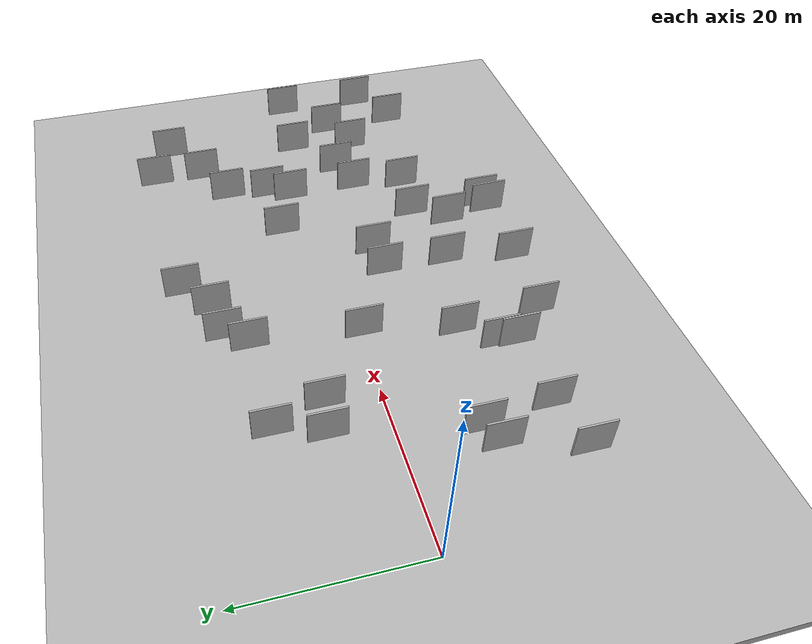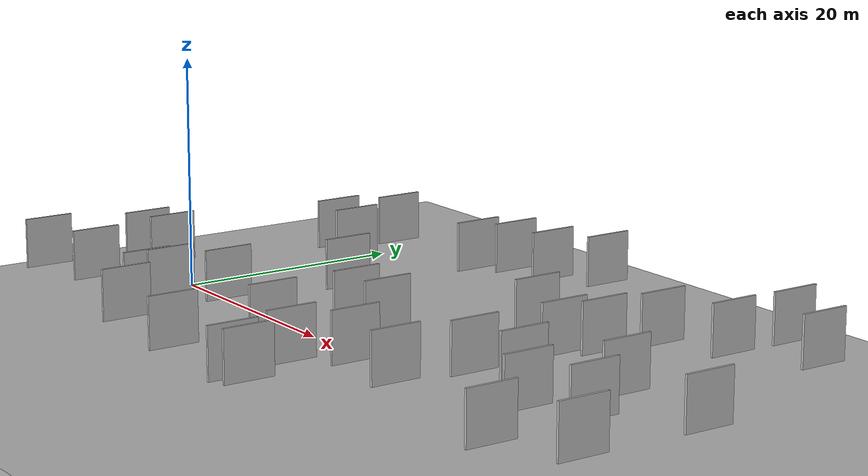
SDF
<?xml version="1.0" encoding="utf-8"?>

<sdf version="1.6">

   <world name="default">

      <gui fullscreen="0">

         <camera name="user_camera">

            <pose>-15 0 4.57585 0 0 0</pose>

            <view_controller>orbit</view_controller>

         </camera>

      </gui>

      <scene>

         <sky>

           <clouds>

             <speed>12</speed>

           </clouds>

         </sky>

         <ambient>0.4 0.4 0.4 1</ambient>

         <background>0.7 0.7 0.7 1</background>

         <shadows>1</shadows>

      </scene>

      <gravity>0 0 -9.8066</gravity>

      <magnetic_field>6e-06 2.3e-05 -4.2e-05</magnetic_field>

      <physics default="0" name="default_physics" type="ode">

         <ode>

            <solver>

               <type>quick</type>

               <iters>10</iters>

               <sor>1.0</sor>

               <use_dynamic_moi_rescaling>0</use_dynamic_moi_rescaling>

            </solver>

            <constraints>

               <cfm>0</cfm>

               <erp>0.2</erp>

               <contact_max_correcting_vel>100</contact_max_correcting_vel>

               <contact_surface_layer>0.001</contact_surface_layer>

            </constraints>

         </ode>

         <max_step_size>0.004</max_step_size>

         <real_time_factor>1</real_time_factor>

         <real_time_update_rate>250</real_time_update_rate>

      </physics>

      <light name="sun" type="directional">

         <cast_shadows>1</cast_shadows>

         <pose>0 0 10 0 0 0</pose>

         <diffuse>0.8 0.8 0.8 1</diffuse>

         <specular>0.2 0.2 0.2 1</specular>

         <attenuation>

            <range>1000</range>

            <constant>0.9</constant>

            <linear>0.01</linear>

            <quadratic>0.001</quadratic>

         </attenuation>

         <direction>-0.5 0.1 -0.9</direction>

      </light>

      <include>

         <name>ground_plane_1</name>

         <uri>model://HANNAS_ground_plane</uri>

         <pose>0 0 0  0 0 0</pose>

      </include>

      <include>

         <name>ground_plane_2</name>

         <uri>model://HANNAS_ground_plane</uri>

         <pose>100 0 0  0 0 0</pose>

      </include>

      <model name="HANNAS_wall_1">

         <static>1</static>

         <pose frame="">34.6779 18.2347 5.0 0.000000 0.000000 1.570796</pose>

         <link name="link">

            <pose frame="">0 0 2.00 0 0 0</pose>

            <collision name="collision">

               <geometry>

                  <box>

                     <size>4.00 0.2 4.00</size>

                  </box>

               </geometry>

               <max_contacts>10</max_contacts>

               <surface>

                  <contact>

                     <ode/>

                  </contact>

                  <bounce/>

                  <friction>

                     <torsional>

                        <ode/>

                     </torsional>

                     <ode/>

                  </friction>

               </surface>

            </collision>

            <visual name="visual">

               <cast_shadows>0</cast_shadows>

               <geometry>

                  <box>

                     <size>4.00 0.2 4.00</size>

                  </box>

               </geometry>

               <material>

                  <script>

                     <uri>model://HANNAS_wall/materials/scripts</uri>

                     <uri>model://HANNAS_wall/materials/textures</uri>

                     <name>vrc/HANNAS_wall</name>

                  </script>

               </material>

            </visual>

            <self_collide>0</self_collide>

            <enable_wind>0</enable_wind>

            <kinematic>0</kinematic>

         </link>

      </model>

      <model name="HANNAS_wall_2">

         <static>1</static>

         <pose frame="">41.2831 -18.5304 5.0 0.000000 0.000000 1.570796</pose>

         <link name="link">

            <pose frame="">0 0 2.00 0 0 0</pose>

            <collision name="collision">

               <geometry>

                  <box>

                     <size>4.00 0.2 4.00</size>

                  </box>

               </geometry>

               <max_contacts>10</max_contacts>

               <surface>

                  <contact>

                     <ode/>

                  </contact>

                  <bounce/>

                  <friction>

                     <torsional>

                        <ode/>

                     </torsional>

                     <ode/>

                  </friction>

               </surface>

            </collision>

            <visual name="visual">

               <cast_shadows>0</cast_shadows>

               <geometry>

                  <box>

                     <size>4.00 0.2 4.00</size>

                  </box>

               </geometry>

               <material>

                  <script>

                     <uri>model://HANNAS_wall/materials/scripts</uri>

                     <uri>model://HANNAS_wall/materials/textures</uri>

                     <name>vrc/HANNAS_wall</name>

                  </script>

               </material>

            </visual>

            <self_collide>0</self_collide>

            <enable_wind>0</enable_wind>

            <kinematic>0</kinematic>

         </link>

      </model>

      <model name="HANNAS_wall_3">

         <static>1</static>

         <pose frame="">56.8338 -6.5207 5.0 0.000000 0.000000 1.570796</pose>

         <link name="link">

            <pose frame="">0 0 2.00 0 0 0</pose>

            <collision name="collision">

               <geometry>

                  <box>

                     <size>4.00 0.2 4.00</size>

                  </box>

               </geometry>

               <max_contacts>10</max_contacts>

               <surface>

                  <contact>

                     <ode/>

                  </contact>

                  <bounce/>

                  <friction>

                     <torsional>

                        <ode/>

                     </torsional>

                     <ode/>

                  </friction>

               </surface>

            </collision>

            <visual name="visual">

               <cast_shadows>0</cast_shadows>

               <geometry>

                  <box>

                     <size>4.00 0.2 4.00</size>

                  </box>

               </geometry>

               <material>

                  <script>

                     <uri>model://HANNAS_wall/materials/scripts</uri>

                     <uri>model://HANNAS_wall/materials/textures</uri>

                     <name>vrc/HANNAS_wall</name>

                  </script>

               </material>

            </visual>

            <self_collide>0</self_collide>

            <enable_wind>0</enable_wind>

            <kinematic>0</kinematic>

         </link>

      </model>

      <model name="HANNAS_wall_4">

         <static>1</static>

         <pose frame="">23.8097 0.8381 5.0 0.000000 0.000000 1.570796</pose>

         <link name="link">

            <pose frame="">0 0 2.00 0 0 0</pose>

            <collision name="collision">

               <geometry>

                  <box>

                     <size>4.00 0.2 4.00</size>

                  </box>

               </geometry>

               <max_contacts>10</max_contacts>

               <surface>

                  <contact>

                     <ode/>

                  </contact>

                  <bounce/>

                  <friction>

                     <torsional>

                        <ode/>

                     </torsional>

                     <ode/>

                  </friction>

               </surface>

            </collision>

            <visual name="visual">

               <cast_shadows>0</cast_shadows>

               <geometry>

                  <box>

                     <size>4.00 0.2 4.00</size>

                  </box>

               </geometry>

               <material>

                  <script>

                     <uri>model://HANNAS_wall/materials/scripts</uri>

                     <uri>model://HANNAS_wall/materials/textures</uri>

                     <name>vrc/HANNAS_wall</name>

                  </script>

               </material>

            </visual>

            <self_collide>0</self_collide>

            <enable_wind>0</enable_wind>

            <kinematic>0</kinematic>

         </link>

      </model>

      <model name="HANNAS_wall_5">

         <static>1</static>

         <pose frame="">41.9706 5.6395 5.0 0.000000 0.000000 1.570796</pose>

         <link name="link">

            <pose frame="">0 0 2.00 0 0 0</pose>

            <collision name="collision">

               <geometry>

                  <box>

                     <size>4.00 0.2 4.00</size>

                  </box>

               </geometry>

               <max_contacts>10</max_contacts>

               <surface>

                  <contact>

                     <ode/>

                  </contact>

                  <bounce/>

                  <friction>

                     <torsional>

                        <ode/>

                     </torsional>

                     <ode/>

                  </friction>

               </surface>

            </collision>

            <visual name="visual">

               <cast_shadows>0</cast_shadows>

               <geometry>

                  <box>

                     <size>4.00 0.2 4.00</size>

                  </box>

               </geometry>

               <material>

                  <script>

                     <uri>model://HANNAS_wall/materials/scripts</uri>

                     <uri>model://HANNAS_wall/materials/textures</uri>

                     <name>vrc/HANNAS_wall</name>

                  </script>

               </material>

            </visual>

            <self_collide>0</self_collide>

            <enable_wind>0</enable_wind>

            <kinematic>0</kinematic>

         </link>

      </model>

      <model name="HANNAS_wall_6">

         <static>1</static>

         <pose frame="">40.0282 -19.0480 5.0 0.000000 0.000000 1.570796</pose>

         <link name="link">

            <pose frame="">0 0 2.00 0 0 0</pose>

            <collision name="collision">

               <geometry>

                  <box>

                     <size>4.00 0.2 4.00</size>

                  </box>

               </geometry>

               <max_contacts>10</max_contacts>

               <surface>

                  <contact>

                     <ode/>

                  </contact>

                  <bounce/>

                  <friction>

                     <torsional>

                        <ode/>

                     </torsional>

                     <ode/>

                  </friction>

               </surface>

            </collision>

            <visual name="visual">

               <cast_shadows>0</cast_shadows>

               <geometry>

                  <box>

                     <size>4.00 0.2 4.00</size>

                  </box>

               </geometry>

               <material>

                  <script>

                     <uri>model://HANNAS_wall/materials/scripts</uri>

                     <uri>model://HANNAS_wall/materials/textures</uri>

                     <name>vrc/HANNAS_wall</name>

                  </script>

               </material>

            </visual>

            <self_collide>0</self_collide>

            <enable_wind>0</enable_wind>

            <kinematic>0</kinematic>

         </link>

      </model>

      <model name="HANNAS_wall_7">

         <static>1</static>

         <pose frame="">32.2907 -11.1656 5.0 0.000000 0.000000 1.570796</pose>

         <link name="link">

            <pose frame="">0 0 2.00 0 0 0</pose>

            <collision name="collision">

               <geometry>

                  <box>

                     <size>4.00 0.2 4.00</size>

                  </box>

               </geometry>

               <max_contacts>10</max_contacts>

               <surface>

                  <contact>

                     <ode/>

                  </contact>

                  <bounce/>

                  <friction>

                     <torsional>

                        <ode/>

                     </torsional>

                     <ode/>

                  </friction>

               </surface>

            </collision>

            <visual name="visual">

               <cast_shadows>0</cast_shadows>

               <geometry>

                  <box>

                     <size>4.00 0.2 4.00</size>

                  </box>

               </geometry>

               <material>

                  <script>

                     <uri>model://HANNAS_wall/materials/scripts</uri>

                     <uri>model://HANNAS_wall/materials/textures</uri>

                     <name>vrc/HANNAS_wall</name>

                  </script>

               </material>

            </visual>

            <self_collide>0</self_collide>

            <enable_wind>0</enable_wind>

            <kinematic>0</kinematic>

         </link>

      </model>

      <model name="HANNAS_wall_8">

         <static>1</static>

         <pose frame="">49.4376 5.8700 5.0 0.000000 0.000000 1.570796</pose>

         <link name="link">

            <pose frame="">0 0 2.00 0 0 0</pose>

            <collision name="collision">

               <geometry>

                  <box>

                     <size>4.00 0.2 4.00</size>

                  </box>

               </geometry>

               <max_contacts>10</max_contacts>

               <surface>

                  <contact>

                     <ode/>

                  </contact>

                  <bounce/>

                  <friction>

                     <torsional>

                        <ode/>

                     </torsional>

                     <ode/>

                  </friction>

               </surface>

            </collision>

            <visual name="visual">

               <cast_shadows>0</cast_shadows>

               <geometry>

                  <box>

                     <size>4.00 0.2 4.00</size>

                  </box>

               </geometry>

               <material>

                  <script>

                     <uri>model://HANNAS_wall/materials/scripts</uri>

                     <uri>model://HANNAS_wall/materials/textures</uri>

                     <name>vrc/HANNAS_wall</name>

                  </script>

               </material>

            </visual>

            <self_collide>0</self_collide>

            <enable_wind>0</enable_wind>

            <kinematic>0</kinematic>

         </link>

      </model>

      <model name="HANNAS_wall_9">

         <static>1</static>

         <pose frame="">31.0938 15.5509 5.0 0.000000 0.000000 1.570796</pose>

         <link name="link">

            <pose frame="">0 0 2.00 0 0 0</pose>

            <collision name="collision">

               <geometry>

                  <box>

                     <size>4.00 0.2 4.00</size>

                  </box>

               </geometry>

               <max_contacts>10</max_contacts>

               <surface>

                  <contact>

                     <ode/>

                  </contact>

                  <bounce/>

                  <friction>

                     <torsional>

                        <ode/>

                     </torsional>

                     <ode/>

                  </friction>

               </surface>

            </collision>

            <visual name="visual">

               <cast_shadows>0</cast_shadows>

               <geometry>

                  <box>

                     <size>4.00 0.2 4.00</size>

                  </box>

               </geometry>

               <material>

                  <script>

                     <uri>model://HANNAS_wall/materials/scripts</uri>

                     <uri>model://HANNAS_wall/materials/textures</uri>

                     <name>vrc/HANNAS_wall</name>

                  </script>

               </material>

            </visual>

            <self_collide>0</self_collide>

            <enable_wind>0</enable_wind>

            <kinematic>0</kinematic>

         </link>

      </model>

      <model name="HANNAS_wall_10">

         <static>1</static>

         <pose frame="">41.5080 -10.0222 5.0 0.000000 0.000000 1.570796</pose>

         <link name="link">

            <pose frame="">0 0 2.00 0 0 0</pose>

            <collision name="collision">

               <geometry>

                  <box>

                     <size>4.00 0.2 4.00</size>

                  </box>

               </geometry>

               <max_contacts>10</max_contacts>

               <surface>

                  <contact>

                     <ode/>

                  </contact>

                  <bounce/>

                  <friction>

                     <torsional>

                        <ode/>

                     </torsional>

                     <ode/>

                  </friction>

               </surface>

            </collision>

            <visual name="visual">

               <cast_shadows>0</cast_shadows>

               <geometry>

                  <box>

                     <size>4.00 0.2 4.00</size>

                  </box>

               </geometry>

               <material>

                  <script>

                     <uri>model://HANNAS_wall/materials/scripts</uri>

                     <uri>model://HANNAS_wall/materials/textures</uri>

                     <name>vrc/HANNAS_wall</name>

                  </script>

               </material>

            </visual>

            <self_collide>0</self_collide>

            <enable_wind>0</enable_wind>

            <kinematic>0</kinematic>

         </link>

      </model>

      <model name="HANNAS_wall_11">

         <static>1</static>

         <pose frame="">32.3945 -3.9706 5.0 0.000000 0.000000 1.570796</pose>

         <link name="link">

            <pose frame="">0 0 2.00 0 0 0</pose>

            <collision name="collision">

               <geometry>

                  <box>

                     <size>4.00 0.2 4.00</size>

                  </box>

               </geometry>

               <max_contacts>10</max_contacts>

               <surface>

                  <contact>

                     <ode/>

                  </contact>

                  <bounce/>

                  <friction>

                     <torsional>

                        <ode/>

                     </torsional>

                     <ode/>

                  </friction>

               </surface>

            </collision>

            <visual name="visual">

               <cast_shadows>0</cast_shadows>

               <geometry>

                  <box>

                     <size>4.00 0.2 4.00</size>

                  </box>

               </geometry>

               <material>

                  <script>

                     <uri>model://HANNAS_wall/materials/scripts</uri>

                     <uri>model://HANNAS_wall/materials/textures</uri>

                     <name>vrc/HANNAS_wall</name>

                  </script>

               </material>

            </visual>

            <self_collide>0</self_collide>

            <enable_wind>0</enable_wind>

            <kinematic>0</kinematic>

         </link>

      </model>

      <model name="HANNAS_wall_12">

         <static>1</static>

         <pose frame="">36.1132 -3.6775 5.0 0.000000 0.000000 1.570796</pose>

         <link name="link">

            <pose frame="">0 0 2.00 0 0 0</pose>

            <collision name="collision">

               <geometry>

                  <box>

                     <size>4.00 0.2 4.00</size>

                  </box>

               </geometry>

               <max_contacts>10</max_contacts>

               <surface>

                  <contact>

                     <ode/>

                  </contact>

                  <bounce/>

                  <friction>

                     <torsional>

                        <ode/>

                     </torsional>

                     <ode/>

                  </friction>

               </surface>

            </collision>

            <visual name="visual">

               <cast_shadows>0</cast_shadows>

               <geometry>

                  <box>

                     <size>4.00 0.2 4.00</size>

                  </box>

               </geometry>

               <material>

                  <script>

                     <uri>model://HANNAS_wall/materials/scripts</uri>

                     <uri>model://HANNAS_wall/materials/textures</uri>

                     <name>vrc/HANNAS_wall</name>

                  </script>

               </material>

            </visual>

            <self_collide>0</self_collide>

            <enable_wind>0</enable_wind>

            <kinematic>0</kinematic>

         </link>

      </model>

      <model name="HANNAS_wall_13">

         <static>1</static>

         <pose frame="">60.7066 16.3525 5.0 0.000000 0.000000 1.570796</pose>

         <link name="link">

            <pose frame="">0 0 2.00 0 0 0</pose>

            <collision name="collision">

               <geometry>

                  <box>

                     <size>4.00 0.2 4.00</size>

                  </box>

               </geometry>

               <max_contacts>10</max_contacts>

               <surface>

                  <contact>

                     <ode/>

                  </contact>

                  <bounce/>

                  <friction>

                     <torsional>

                        <ode/>

                     </torsional>

                     <ode/>

                  </friction>

               </surface>

            </collision>

            <visual name="visual">

               <cast_shadows>0</cast_shadows>

               <geometry>

                  <box>

                     <size>4.00 0.2 4.00</size>

                  </box>

               </geometry>

               <material>

                  <script>

                     <uri>model://HANNAS_wall/materials/scripts</uri>

                     <uri>model://HANNAS_wall/materials/textures</uri>

                     <name>vrc/HANNAS_wall</name>

                  </script>

               </material>

            </visual>

            <self_collide>0</self_collide>

            <enable_wind>0</enable_wind>

            <kinematic>0</kinematic>

         </link>

      </model>

      <model name="HANNAS_wall_14">

         <static>1</static>

         <pose frame="">48.3016 -4.6611 5.0 0.000000 0.000000 1.570796</pose>

         <link name="link">

            <pose frame="">0 0 2.00 0 0 0</pose>

            <collision name="collision">

               <geometry>

                  <box>

                     <size>4.00 0.2 4.00</size>

                  </box>

               </geometry>

               <max_contacts>10</max_contacts>

               <surface>

                  <contact>

                     <ode/>

                  </contact>

                  <bounce/>

                  <friction>

                     <torsional>

                        <ode/>

                     </torsional>

                     <ode/>

                  </friction>

               </surface>

            </collision>

            <visual name="visual">

               <cast_shadows>0</cast_shadows>

               <geometry>

                  <box>

                     <size>4.00 0.2 4.00</size>

                  </box>

               </geometry>

               <material>

                  <script>

                     <uri>model://HANNAS_wall/materials/scripts</uri>

                     <uri>model://HANNAS_wall/materials/textures</uri>

                     <name>vrc/HANNAS_wall</name>

                  </script>

               </material>

            </visual>

            <self_collide>0</self_collide>

            <enable_wind>0</enable_wind>

            <kinematic>0</kinematic>

         </link>

      </model>

      <model name="HANNAS_wall_15">

         <static>1</static>

         <pose frame="">61.4037 -12.8833 5.0 0.000000 0.000000 1.570796</pose>

         <link name="link">

            <pose frame="">0 0 2.00 0 0 0</pose>

            <collision name="collision">

               <geometry>

                  <box>

                     <size>4.00 0.2 4.00</size>

                  </box>

               </geometry>

               <max_contacts>10</max_contacts>

               <surface>

                  <contact>

                     <ode/>

                  </contact>

                  <bounce/>

                  <friction>

                     <torsional>

                        <ode/>

                     </torsional>

                     <ode/>

                  </friction>

               </surface>

            </collision>

            <visual name="visual">

               <cast_shadows>0</cast_shadows>

               <geometry>

                  <box>

                     <size>4.00 0.2 4.00</size>

                  </box>

               </geometry>

               <material>

                  <script>

                     <uri>model://HANNAS_wall/materials/scripts</uri>

                     <uri>model://HANNAS_wall/materials/textures</uri>

                     <name>vrc/HANNAS_wall</name>

                  </script>

               </material>

            </visual>

            <self_collide>0</self_collide>

            <enable_wind>0</enable_wind>

            <kinematic>0</kinematic>

         </link>

      </model>

      <model name="HANNAS_wall_16">

         <static>1</static>

         <pose frame="">10.0688 -14.1848 5.0 0.000000 0.000000 1.570796</pose>

         <link name="link">

            <pose frame="">0 0 2.00 0 0 0</pose>

            <collision name="collision">

               <geometry>

                  <box>

                     <size>4.00 0.2 4.00</size>

                  </box>

               </geometry>

               <max_contacts>10</max_contacts>

               <surface>

                  <contact>

                     <ode/>

                  </contact>

                  <bounce/>

                  <friction>

                     <torsional>

                        <ode/>

                     </torsional>

                     <ode/>

                  </friction>

               </surface>

            </collision>

            <visual name="visual">

               <cast_shadows>0</cast_shadows>

               <geometry>

                  <box>

                     <size>4.00 0.2 4.00</size>

                  </box>

               </geometry>

               <material>

                  <script>

                     <uri>model://HANNAS_wall/materials/scripts</uri>

                     <uri>model://HANNAS_wall/materials/textures</uri>

                     <name>vrc/HANNAS_wall</name>

                  </script>

               </material>

            </visual>

            <self_collide>0</self_collide>

            <enable_wind>0</enable_wind>

            <kinematic>0</kinematic>

         </link>

      </model>

      <model name="HANNAS_wall_17">

         <static>1</static>

         <pose frame="">24.9942 12.6463 5.0 0.000000 0.000000 1.570796</pose>

         <link name="link">

            <pose frame="">0 0 2.00 0 0 0</pose>

            <collision name="collision">

               <geometry>

                  <box>

                     <size>4.00 0.2 4.00</size>

                  </box>

               </geometry>

               <max_contacts>10</max_contacts>

               <surface>

                  <contact>

                     <ode/>

                  </contact>

                  <bounce/>

                  <friction>

                     <torsional>

                        <ode/>

                     </torsional>

                     <ode/>

                  </friction>

               </surface>

            </collision>

            <visual name="visual">

               <cast_shadows>0</cast_shadows>

               <geometry>

                  <box>

                     <size>4.00 0.2 4.00</size>

                  </box>

               </geometry>

               <material>

                  <script>

                     <uri>model://HANNAS_wall/materials/scripts</uri>

                     <uri>model://HANNAS_wall/materials/textures</uri>

                     <name>vrc/HANNAS_wall</name>

                  </script>

               </material>

            </visual>

            <self_collide>0</self_collide>

            <enable_wind>0</enable_wind>

            <kinematic>0</kinematic>

         </link>

      </model>

      <model name="HANNAS_wall_18">

         <static>1</static>

         <pose frame="">47.2511 -10.5156 5.0 0.000000 0.000000 1.570796</pose>

         <link name="link">

            <pose frame="">0 0 2.00 0 0 0</pose>

            <collision name="collision">

               <geometry>

                  <box>

                     <size>4.00 0.2 4.00</size>

                  </box>

               </geometry>

               <max_contacts>10</max_contacts>

               <surface>

                  <contact>

                     <ode/>

                  </contact>

                  <bounce/>

                  <friction>

                     <torsional>

                        <ode/>

                     </torsional>

                     <ode/>

                  </friction>

               </surface>

            </collision>

            <visual name="visual">

               <cast_shadows>0</cast_shadows>

               <geometry>

                  <box>

                     <size>4.00 0.2 4.00</size>

                  </box>

               </geometry>

               <material>

                  <script>

                     <uri>model://HANNAS_wall/materials/scripts</uri>

                     <uri>model://HANNAS_wall/materials/textures</uri>

                     <name>vrc/HANNAS_wall</name>

                  </script>

               </material>

            </visual>

            <self_collide>0</self_collide>

            <enable_wind>0</enable_wind>

            <kinematic>0</kinematic>

         </link>

      </model>

      <model name="HANNAS_wall_19">

         <static>1</static>

         <pose frame="">50.2220 10.6491 5.0 0.000000 0.000000 1.570796</pose>

         <link name="link">

            <pose frame="">0 0 2.00 0 0 0</pose>

            <collision name="collision">

               <geometry>

                  <box>

                     <size>4.00 0.2 4.00</size>

                  </box>

               </geometry>

               <max_contacts>10</max_contacts>

               <surface>

                  <contact>

                     <ode/>

                  </contact>

                  <bounce/>

                  <friction>

                     <torsional>

                        <ode/>

                     </torsional>

                     <ode/>

                  </friction>

               </surface>

            </collision>

            <visual name="visual">

               <cast_shadows>0</cast_shadows>

               <geometry>

                  <box>

                     <size>4.00 0.2 4.00</size>

                  </box>

               </geometry>

               <material>

                  <script>

                     <uri>model://HANNAS_wall/materials/scripts</uri>

                     <uri>model://HANNAS_wall/materials/textures</uri>

                     <name>vrc/HANNAS_wall</name>

                  </script>

               </material>

            </visual>

            <self_collide>0</self_collide>

            <enable_wind>0</enable_wind>

            <kinematic>0</kinematic>

         </link>

      </model>

      <model name="HANNAS_wall_20">

         <static>1</static>

         <pose frame="">39.0087 -13.7221 5.0 0.000000 0.000000 1.570796</pose>

         <link name="link">

            <pose frame="">0 0 2.00 0 0 0</pose>

            <collision name="collision">

               <geometry>

                  <box>

                     <size>4.00 0.2 4.00</size>

                  </box>

               </geometry>

               <max_contacts>10</max_contacts>

               <surface>

                  <contact>

                     <ode/>

                  </contact>

                  <bounce/>

                  <friction>

                     <torsional>

                        <ode/>

                     </torsional>

                     <ode/>

                  </friction>

               </surface>

            </collision>

            <visual name="visual">

               <cast_shadows>0</cast_shadows>

               <geometry>

                  <box>

                     <size>4.00 0.2 4.00</size>

                  </box>

               </geometry>

               <material>

                  <script>

                     <uri>model://HANNAS_wall/materials/scripts</uri>

                     <uri>model://HANNAS_wall/materials/textures</uri>

                     <name>vrc/HANNAS_wall</name>

                  </script>

               </material>

            </visual>

            <self_collide>0</self_collide>

            <enable_wind>0</enable_wind>

            <kinematic>0</kinematic>

         </link>

      </model>

      <model name="HANNAS_wall_21">

         <static>1</static>

         <pose frame="">18.8924 -12.2802 5.0 0.000000 0.000000 1.570796</pose>

         <link name="link">

            <pose frame="">0 0 2.00 0 0 0</pose>

            <collision name="collision">

               <geometry>

                  <box>

                     <size>4.00 0.2 4.00</size>

                  </box>

               </geometry>

               <max_contacts>10</max_contacts>

               <surface>

                  <contact>

                     <ode/>

                  </contact>

                  <bounce/>

                  <friction>

                     <torsional>

                        <ode/>

                     </torsional>

                     <ode/>

                  </friction>

               </surface>

            </collision>

            <visual name="visual">

               <cast_shadows>0</cast_shadows>

               <geometry>

                  <box>

                     <size>4.00 0.2 4.00</size>

                  </box>

               </geometry>

               <material>

                  <script>

                     <uri>model://HANNAS_wall/materials/scripts</uri>

                     <uri>model://HANNAS_wall/materials/textures</uri>

                     <name>vrc/HANNAS_wall</name>

                  </script>

               </material>

            </visual>

            <self_collide>0</self_collide>

            <enable_wind>0</enable_wind>

            <kinematic>0</kinematic>

         </link>

      </model>

      <model name="HANNAS_wall_22">

         <static>1</static>

         <pose frame="">55.1915 18.8106 5.0 0.000000 0.000000 1.570796</pose>

         <link name="link">

            <pose frame="">0 0 2.00 0 0 0</pose>

            <collision name="collision">

               <geometry>

                  <box>

                     <size>4.00 0.2 4.00</size>

                  </box>

               </geometry>

               <max_contacts>10</max_contacts>

               <surface>

                  <contact>

                     <ode/>

                  </contact>

                  <bounce/>

                  <friction>

                     <torsional>

                        <ode/>

                     </torsional>

                     <ode/>

                  </friction>

               </surface>

            </collision>

            <visual name="visual">

               <cast_shadows>0</cast_shadows>

               <geometry>

                  <box>

                     <size>4.00 0.2 4.00</size>

                  </box>

               </geometry>

               <material>

                  <script>

                     <uri>model://HANNAS_wall/materials/scripts</uri>

                     <uri>model://HANNAS_wall/materials/textures</uri>

                     <name>vrc/HANNAS_wall</name>

                  </script>

               </material>

            </visual>

            <self_collide>0</self_collide>

            <enable_wind>0</enable_wind>

            <kinematic>0</kinematic>

         </link>

      </model>

      <model name="HANNAS_wall_23">

         <static>1</static>

         <pose frame="">27.0279 14.9496 5.0 0.000000 0.000000 1.570796</pose>

         <link name="link">

            <pose frame="">0 0 2.00 0 0 0</pose>

            <collision name="collision">

               <geometry>

                  <box>

                     <size>4.00 0.2 4.00</size>

                  </box>

               </geometry>

               <max_contacts>10</max_contacts>

               <surface>

                  <contact>

                     <ode/>

                  </contact>

                  <bounce/>

                  <friction>

                     <torsional>

                        <ode/>

                     </torsional>

                     <ode/>

                  </friction>

               </surface>

            </collision>

            <visual name="visual">

               <cast_shadows>0</cast_shadows>

               <geometry>

                  <box>

                     <size>4.00 0.2 4.00</size>

                  </box>

               </geometry>

               <material>

                  <script>

                     <uri>model://HANNAS_wall/materials/scripts</uri>

                     <uri>model://HANNAS_wall/materials/textures</uri>

                     <name>vrc/HANNAS_wall</name>

                  </script>

               </material>

            </visual>

            <self_collide>0</self_collide>

            <enable_wind>0</enable_wind>

            <kinematic>0</kinematic>

         </link>

      </model>

      <model name="HANNAS_wall_24">

         <static>1</static>

         <pose frame="">13.5922 12.6029 5.0 0.000000 0.000000 1.570796</pose>

         <link name="link">

            <pose frame="">0 0 2.00 0 0 0</pose>

            <collision name="collision">

               <geometry>

                  <box>

                     <size>4.00 0.2 4.00</size>

                  </box>

               </geometry>

               <max_contacts>10</max_contacts>

               <surface>

                  <contact>

                     <ode/>

                  </contact>

                  <bounce/>

                  <friction>

                     <torsional>

                        <ode/>

                     </torsional>

                     <ode/>

                  </friction>

               </surface>

            </collision>

            <visual name="visual">

               <cast_shadows>0</cast_shadows>

               <geometry>

                  <box>

                     <size>4.00 0.2 4.00</size>

                  </box>

               </geometry>

               <material>

                  <script>

                     <uri>model://HANNAS_wall/materials/scripts</uri>

                     <uri>model://HANNAS_wall/materials/textures</uri>

                     <name>vrc/HANNAS_wall</name>

                  </script>

               </material>

            </visual>

            <self_collide>0</self_collide>

            <enable_wind>0</enable_wind>

            <kinematic>0</kinematic>

         </link>

      </model>

      <model name="HANNAS_wall_25">

         <static>1</static>

         <pose frame="">22.3306 -17.9284 5.0 0.000000 0.000000 1.570796</pose>

         <link name="link">

            <pose frame="">0 0 2.00 0 0 0</pose>

            <collision name="collision">

               <geometry>

                  <box>

                     <size>4.00 0.2 4.00</size>

                  </box>

               </geometry>

               <max_contacts>10</max_contacts>

               <surface>

                  <contact>

                     <ode/>

                  </contact>

                  <bounce/>

                  <friction>

                     <torsional>

                        <ode/>

                     </torsional>

                     <ode/>

                  </friction>

               </surface>

            </collision>

            <visual name="visual">

               <cast_shadows>0</cast_shadows>

               <geometry>

                  <box>

                     <size>4.00 0.2 4.00</size>

                  </box>

               </geometry>

               <material>

                  <script>

                     <uri>model://HANNAS_wall/materials/scripts</uri>

                     <uri>model://HANNAS_wall/materials/textures</uri>

                     <name>vrc/HANNAS_wall</name>

                  </script>

               </material>

            </visual>

            <self_collide>0</self_collide>

            <enable_wind>0</enable_wind>

            <kinematic>0</kinematic>

         </link>

      </model>

      <model name="HANNAS_wall_26">

         <static>1</static>

         <pose frame="">15.6214 7.0229 5.0 0.000000 0.000000 1.570796</pose>

         <link name="link">

            <pose frame="">0 0 2.00 0 0 0</pose>

            <collision name="collision">

               <geometry>

                  <box>

                     <size>4.00 0.2 4.00</size>

                  </box>

               </geometry>

               <max_contacts>10</max_contacts>

               <surface>

                  <contact>

                     <ode/>

                  </contact>

                  <bounce/>

                  <friction>

                     <torsional>

                        <ode/>

                     </torsional>

                     <ode/>

                  </friction>

               </surface>

            </collision>

            <visual name="visual">

               <cast_shadows>0</cast_shadows>

               <geometry>

                  <box>

                     <size>4.00 0.2 4.00</size>

                  </box>

               </geometry>

               <material>

                  <script>

                     <uri>model://HANNAS_wall/materials/scripts</uri>

                     <uri>model://HANNAS_wall/materials/textures</uri>

                     <name>vrc/HANNAS_wall</name>

                  </script>

               </material>

            </visual>

            <self_collide>0</self_collide>

            <enable_wind>0</enable_wind>

            <kinematic>0</kinematic>

         </link>

      </model>

      <model name="HANNAS_wall_27">

         <static>1</static>

         <pose frame="">48.1518 3.2846 5.0 0.000000 0.000000 1.570796</pose>

         <link name="link">

            <pose frame="">0 0 2.00 0 0 0</pose>

            <collision name="collision">

               <geometry>

                  <box>

                     <size>4.00 0.2 4.00</size>

                  </box>

               </geometry>

               <max_contacts>10</max_contacts>

               <surface>

                  <contact>

                     <ode/>

                  </contact>

                  <bounce/>

                  <friction>

                     <torsional>

                        <ode/>

                     </torsional>

                     <ode/>

                  </friction>

               </surface>

            </collision>

            <visual name="visual">

               <cast_shadows>0</cast_shadows>

               <geometry>

                  <box>

                     <size>4.00 0.2 4.00</size>

                  </box>

               </geometry>

               <material>

                  <script>

                     <uri>model://HANNAS_wall/materials/scripts</uri>

                     <uri>model://HANNAS_wall/materials/textures</uri>

                     <name>vrc/HANNAS_wall</name>

                  </script>

               </material>

            </visual>

            <self_collide>0</self_collide>

            <enable_wind>0</enable_wind>

            <kinematic>0</kinematic>

         </link>

      </model>

      <model name="HANNAS_wall_28">

         <static>1</static>

         <pose frame="">11.8843 7.6312 5.0 0.000000 0.000000 1.570796</pose>

         <link name="link">

            <pose frame="">0 0 2.00 0 0 0</pose>

            <collision name="collision">

               <geometry>

                  <box>

                     <size>4.00 0.2 4.00</size>

                  </box>

               </geometry>

               <max_contacts>10</max_contacts>

               <surface>

                  <contact>

                     <ode/>

                  </contact>

                  <bounce/>

                  <friction>

                     <torsional>

                        <ode/>

                     </torsional>

                     <ode/>

                  </friction>

               </surface>

            </collision>

            <visual name="visual">

               <cast_shadows>0</cast_shadows>

               <geometry>

                  <box>

                     <size>4.00 0.2 4.00</size>

                  </box>

               </geometry>

               <material>

                  <script>

                     <uri>model://HANNAS_wall/materials/scripts</uri>

                     <uri>model://HANNAS_wall/materials/textures</uri>

                     <name>vrc/HANNAS_wall</name>

                  </script>

               </material>

            </visual>

            <self_collide>0</self_collide>

            <enable_wind>0</enable_wind>

            <kinematic>0</kinematic>

         </link>

      </model>

      <model name="HANNAS_wall_29">

         <static>1</static>

         <pose frame="">4.2688 -15.5294 5.0 0.000000 0.000000 1.570796</pose>

         <link name="link">

            <pose frame="">0 0 2.00 0 0 0</pose>

            <collision name="collision">

               <geometry>

                  <box>

                     <size>4.00 0.2 4.00</size>

                  </box>

               </geometry>

               <max_contacts>10</max_contacts>

               <surface>

                  <contact>

                     <ode/>

                  </contact>

                  <bounce/>

                  <friction>

                     <torsional>

                        <ode/>

                     </torsional>

                     <ode/>

                  </friction>

               </surface>

            </collision>

            <visual name="visual">

               <cast_shadows>0</cast_shadows>

               <geometry>

                  <box>

                     <size>4.00 0.2 4.00</size>

                  </box>

               </geometry>

               <material>

                  <script>

                     <uri>model://HANNAS_wall/materials/scripts</uri>

                     <uri>model://HANNAS_wall/materials/textures</uri>

                     <name>vrc/HANNAS_wall</name>

                  </script>

               </material>

            </visual>

            <self_collide>0</self_collide>

            <enable_wind>0</enable_wind>

            <kinematic>0</kinematic>

         </link>

      </model>

      <model name="HANNAS_wall_30">

         <static>1</static>

         <pose frame="">66.6837 -9.7777 5.0 0.000000 0.000000 1.570796</pose>

         <link name="link">

            <pose frame="">0 0 2.00 0 0 0</pose>

            <collision name="collision">

               <geometry>

                  <box>

                     <size>4.00 0.2 4.00</size>

                  </box>

               </geometry>

               <max_contacts>10</max_contacts>

               <surface>

                  <contact>

                     <ode/>

                  </contact>

                  <bounce/>

                  <friction>

                     <torsional>

                        <ode/>

                     </torsional>

                     <ode/>

                  </friction>

               </surface>

            </collision>

            <visual name="visual">

               <cast_shadows>0</cast_shadows>

               <geometry>

                  <box>

                     <size>4.00 0.2 4.00</size>

                  </box>

               </geometry>

               <material>

                  <script>

                     <uri>model://HANNAS_wall/materials/scripts</uri>

                     <uri>model://HANNAS_wall/materials/textures</uri>

                     <name>vrc/HANNAS_wall</name>

                  </script>

               </material>

            </visual>

            <self_collide>0</self_collide>

            <enable_wind>0</enable_wind>

            <kinematic>0</kinematic>

         </link>

      </model>

      <model name="HANNAS_wall_31">

         <static>1</static>

         <pose frame="">66.8754 0.2989 5.0 0.000000 0.000000 1.570796</pose>

         <link name="link">

            <pose frame="">0 0 2.00 0 0 0</pose>

            <collision name="collision">

               <geometry>

                  <box>

                     <size>4.00 0.2 4.00</size>

                  </box>

               </geometry>

               <max_contacts>10</max_contacts>

               <surface>

                  <contact>

                     <ode/>

                  </contact>

                  <bounce/>

                  <friction>

                     <torsional>

                        <ode/>

                     </torsional>

                     <ode/>

                  </friction>

               </surface>

            </collision>

            <visual name="visual">

               <cast_shadows>0</cast_shadows>

               <geometry>

                  <box>

                     <size>4.00 0.2 4.00</size>

                  </box>

               </geometry>

               <material>

                  <script>

                     <uri>model://HANNAS_wall/materials/scripts</uri>

                     <uri>model://HANNAS_wall/materials/textures</uri>

                     <name>vrc/HANNAS_wall</name>

                  </script>

               </material>

            </visual>

            <self_collide>0</self_collide>

            <enable_wind>0</enable_wind>

            <kinematic>0</kinematic>

         </link>

      </model>

      <model name="HANNAS_wall_32">

         <static>1</static>

         <pose frame="">61.1235 -4.4262 5.0 0.000000 0.000000 1.570796</pose>

         <link name="link">

            <pose frame="">0 0 2.00 0 0 0</pose>

            <collision name="collision">

               <geometry>

                  <box>

                     <size>4.00 0.2 4.00</size>

                  </box>

               </geometry>

               <max_contacts>10</max_contacts>

               <surface>

                  <contact>

                     <ode/>

                  </contact>

                  <bounce/>

                  <friction>

                     <torsional>

                        <ode/>

                     </torsional>

                     <ode/>

                  </friction>

               </surface>

            </collision>

            <visual name="visual">

               <cast_shadows>0</cast_shadows>

               <geometry>

                  <box>

                     <size>4.00 0.2 4.00</size>

                  </box>

               </geometry>

               <material>

                  <script>

                     <uri>model://HANNAS_wall/materials/scripts</uri>

                     <uri>model://HANNAS_wall/materials/textures</uri>

                     <name>vrc/HANNAS_wall</name>

                  </script>

               </material>

            </visual>

            <self_collide>0</self_collide>

            <enable_wind>0</enable_wind>

            <kinematic>0</kinematic>

         </link>

      </model>

      <model name="HANNAS_wall_33">

         <static>1</static>

         <pose frame="">9.0816 -6.7446 5.0 0.000000 0.000000 1.570796</pose>

         <link name="link">

            <pose frame="">0 0 2.00 0 0 0</pose>

            <collision name="collision">

               <geometry>

                  <box>

                     <size>4.00 0.2 4.00</size>

                  </box>

               </geometry>

               <max_contacts>10</max_contacts>

               <surface>

                  <contact>

                     <ode/>

                  </contact>

                  <bounce/>

                  <friction>

                     <torsional>

                        <ode/>

                     </torsional>

                     <ode/>

                  </friction>

               </surface>

            </collision>

            <visual name="visual">

               <cast_shadows>0</cast_shadows>

               <geometry>

                  <box>

                     <size>4.00 0.2 4.00</size>

                  </box>

               </geometry>

               <material>

                  <script>

                     <uri>model://HANNAS_wall/materials/scripts</uri>

                     <uri>model://HANNAS_wall/materials/textures</uri>

                     <name>vrc/HANNAS_wall</name>

                  </script>

               </material>

            </visual>

            <self_collide>0</self_collide>

            <enable_wind>0</enable_wind>

            <kinematic>0</kinematic>

         </link>

      </model>

      <model name="HANNAS_wall_34">

         <static>1</static>

         <pose frame="">55.0115 13.1132 5.0 0.000000 0.000000 1.570796</pose>

         <link name="link">

            <pose frame="">0 0 2.00 0 0 0</pose>

            <collision name="collision">

               <geometry>

                  <box>

                     <size>4.00 0.2 4.00</size>

                  </box>

               </geometry>

               <max_contacts>10</max_contacts>

               <surface>

                  <contact>

                     <ode/>

                  </contact>

                  <bounce/>

                  <friction>

                     <torsional>

                        <ode/>

                     </torsional>

                     <ode/>

                  </friction>

               </surface>

            </collision>

            <visual name="visual">

               <cast_shadows>0</cast_shadows>

               <geometry>

                  <box>

                     <size>4.00 0.2 4.00</size>

                  </box>

               </geometry>

               <material>

                  <script>

                     <uri>model://HANNAS_wall/materials/scripts</uri>

                     <uri>model://HANNAS_wall/materials/textures</uri>

                     <name>vrc/HANNAS_wall</name>

                  </script>

               </material>

            </visual>

            <self_collide>0</self_collide>

            <enable_wind>0</enable_wind>

            <kinematic>0</kinematic>

         </link>

      </model>

      <model name="HANNAS_wall_35">

         <static>1</static>

         <pose frame="">6.7504 -7.7700 5.0 0.000000 0.000000 1.570796</pose>

         <link name="link">

            <pose frame="">0 0 2.00 0 0 0</pose>

            <collision name="collision">

               <geometry>

                  <box>

                     <size>4.00 0.2 4.00</size>

                  </box>

               </geometry>

               <max_contacts>10</max_contacts>

               <surface>

                  <contact>

                     <ode/>

                  </contact>

                  <bounce/>

                  <friction>

                     <torsional>

                        <ode/>

                     </torsional>

                     <ode/>

                  </friction>

               </surface>

            </collision>

            <visual name="visual">

               <cast_shadows>0</cast_shadows>

               <geometry>

                  <box>

                     <size>4.00 0.2 4.00</size>

                  </box>

               </geometry>

               <material>

                  <script>

                     <uri>model://HANNAS_wall/materials/scripts</uri>

                     <uri>model://HANNAS_wall/materials/textures</uri>

                     <name>vrc/HANNAS_wall</name>

                  </script>

               </material>

            </visual>

            <self_collide>0</self_collide>

            <enable_wind>0</enable_wind>

            <kinematic>0</kinematic>

         </link>

      </model>

      <model name="HANNAS_wall_36">

         <static>1</static>

         <pose frame="">58.0404 0.8102 5.0 0.000000 0.000000 1.570796</pose>

         <link name="link">

            <pose frame="">0 0 2.00 0 0 0</pose>

            <collision name="collision">

               <geometry>

                  <box>

                     <size>4.00 0.2 4.00</size>

                  </box>

               </geometry>

               <max_contacts>10</max_contacts>

               <surface>

                  <contact>

                     <ode/>

                  </contact>

                  <bounce/>

                  <friction>

                     <torsional>

                        <ode/>

                     </torsional>

                     <ode/>

                  </friction>

               </surface>

            </collision>

            <visual name="visual">

               <cast_shadows>0</cast_shadows>

               <geometry>

                  <box>

                     <size>4.00 0.2 4.00</size>

                  </box>

               </geometry>

               <material>

                  <script>

                     <uri>model://HANNAS_wall/materials/scripts</uri>

                     <uri>model://HANNAS_wall/materials/textures</uri>

                     <name>vrc/HANNAS_wall</name>

                  </script>

               </material>

            </visual>

            <self_collide>0</self_collide>

            <enable_wind>0</enable_wind>

            <kinematic>0</kinematic>

         </link>

      </model>

      <model name="HANNAS_wall_37">

         <static>1</static>

         <pose frame="">52.3082 -3.4207 5.0 0.000000 0.000000 1.570796</pose>

         <link name="link">

            <pose frame="">0 0 2.00 0 0 0</pose>

            <collision name="collision">

               <geometry>

                  <box>

                     <size>4.00 0.2 4.00</size>

                  </box>

               </geometry>

               <max_contacts>10</max_contacts>

               <surface>

                  <contact>

                     <ode/>

                  </contact>

                  <bounce/>

                  <friction>

                     <torsional>

                        <ode/>

                     </torsional>

                     <ode/>

                  </friction>

               </surface>

            </collision>

            <visual name="visual">

               <cast_shadows>0</cast_shadows>

               <geometry>

                  <box>

                     <size>4.00 0.2 4.00</size>

                  </box>

               </geometry>

               <material>

                  <script>

                     <uri>model://HANNAS_wall/materials/scripts</uri>

                     <uri>model://HANNAS_wall/materials/textures</uri>

                     <name>vrc/HANNAS_wall</name>

                  </script>

               </material>

            </visual>

            <self_collide>0</self_collide>

            <enable_wind>0</enable_wind>

            <kinematic>0</kinematic>

         </link>

      </model>

      <model name="HANNAS_wall_38">

         <static>1</static>

         <pose frame="">18.6398 -14.1969 5.0 0.000000 0.000000 1.570796</pose>

         <link name="link">

            <pose frame="">0 0 2.00 0 0 0</pose>

            <collision name="collision">

               <geometry>

                  <box>

                     <size>4.00 0.2 4.00</size>

                  </box>

               </geometry>

               <max_contacts>10</max_contacts>

               <surface>

                  <contact>

                     <ode/>

                  </contact>

                  <bounce/>

                  <friction>

                     <torsional>

                        <ode/>

                     </torsional>

                     <ode/>

                  </friction>

               </surface>

            </collision>

            <visual name="visual">

               <cast_shadows>0</cast_shadows>

               <geometry>

                  <box>

                     <size>4.00 0.2 4.00</size>

                  </box>

               </geometry>

               <material>

                  <script>

                     <uri>model://HANNAS_wall/materials/scripts</uri>

                     <uri>model://HANNAS_wall/materials/textures</uri>

                     <name>vrc/HANNAS_wall</name>

                  </script>

               </material>

            </visual>

            <self_collide>0</self_collide>

            <enable_wind>0</enable_wind>

            <kinematic>0</kinematic>

         </link>

      </model>

      <model name="HANNAS_wall_39">

         <static>1</static>

         <pose frame="">21.6546 -8.7455 5.0 0.000000 0.000000 1.570796</pose>

         <link name="link">

            <pose frame="">0 0 2.00 0 0 0</pose>

            <collision name="collision">

               <geometry>

                  <box>

                     <size>4.00 0.2 4.00</size>

                  </box>

               </geometry>

               <max_contacts>10</max_contacts>

               <surface>

                  <contact>

                     <ode/>

                  </contact>

                  <bounce/>

                  <friction>

                     <torsional>

                        <ode/>

                     </torsional>

                     <ode/>

                  </friction>

               </surface>

            </collision>

            <visual name="visual">

               <cast_shadows>0</cast_shadows>

               <geometry>

                  <box>

                     <size>4.00 0.2 4.00</size>

                  </box>

               </geometry>

               <material>

                  <script>

                     <uri>model://HANNAS_wall/materials/scripts</uri>

                     <uri>model://HANNAS_wall/materials/textures</uri>

                     <name>vrc/HANNAS_wall</name>

                  </script>

               </material>

            </visual>

            <self_collide>0</self_collide>

            <enable_wind>0</enable_wind>

            <kinematic>0</kinematic>

         </link>

      </model>

      <model name="HANNAS_wall_40">

         <static>1</static>

         <pose frame="">31.0297 -18.7314 5.0 0.000000 0.000000 1.570796</pose>

         <link name="link">

            <pose frame="">0 0 2.00 0 0 0</pose>

            <collision name="collision">

               <geometry>

                  <box>

                     <size>4.00 0.2 4.00</size>

                  </box>

               </geometry>

               <max_contacts>10</max_contacts>

               <surface>

                  <contact>

                     <ode/>

                  </contact>

                  <bounce/>

                  <friction>

                     <torsional>

                        <ode/>

                     </torsional>

                     <ode/>

                  </friction>

               </surface>

            </collision>

            <visual name="visual">

               <cast_shadows>0</cast_shadows>

               <geometry>

                  <box>

                     <size>4.00 0.2 4.00</size>

                  </box>

               </geometry>

               <material>

                  <script>

                     <uri>model://HANNAS_wall/materials/scripts</uri>

                     <uri>model://HANNAS_wall/materials/textures</uri>

                     <name>vrc/HANNAS_wall</name>

                  </script>

               </material>

            </visual>

            <self_collide>0</self_collide>

            <enable_wind>0</enable_wind>

            <kinematic>0</kinematic>

         </link>

      </model>

   </world>

</sdf>
